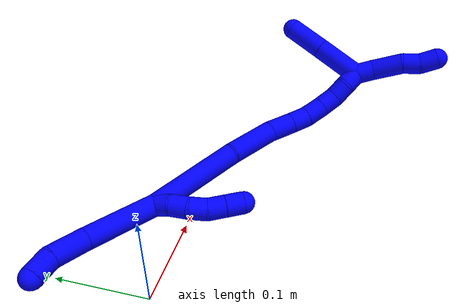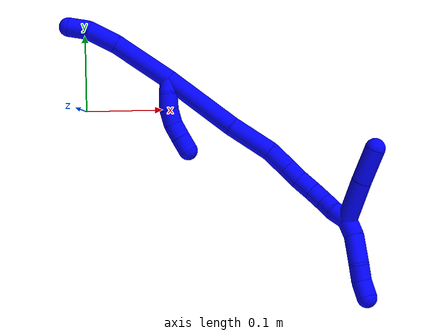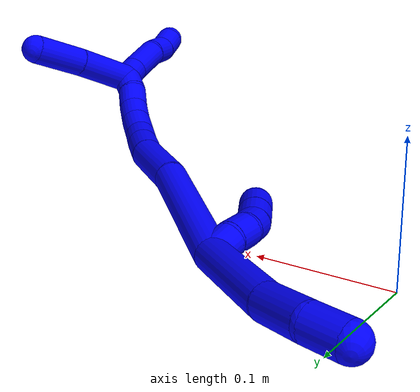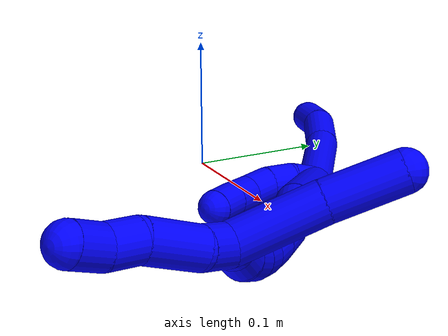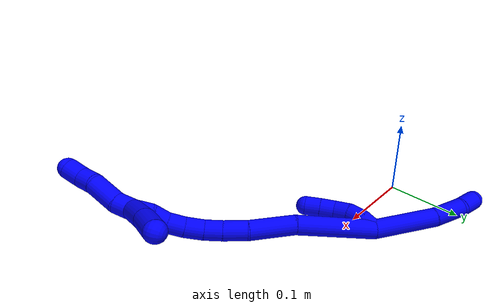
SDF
<sdf version="1.7">
 <world name="default">
  <model name="1">
   <static>0</static>
   <link name="1">
    <collision name="collision-cylinder-e_1_2_8">
     <pose>-0.012343 0.018475 -0.035374 -2.66028 -0.299952 1.10382</pose>
     <geometry><cylinder><radius>0.0125</radius><length>0.083547</length></cylinder></geometry>
     <surface>
      <friction><ode><mu>1.16</mu><mu2>1.16</mu2><slip1>0</slip1><slip2>0</slip2></ode></friction>
      <contact><ode><kp>1e+06</kp><kd>1</kd><max_vel>0</max_vel><min_depth>0.001</min_depth></ode></contact>
     </surface>
    </collision>
    <visual name="visual-cylinder-e_1_2_8">
     <pose>-0.012343 0.018475 -0.035374 -2.66028 -0.299952 1.10382</pose>
     <geometry><cylinder><radius>0.0125</radius><length>0.083547</length></cylinder></geometry>
     <material><ambient>0 0 1 1</ambient></material>
    </visual>
    <collision name="collision-cylinder-e_2_8_9">
     <pose>-0.031624 0.048339 -0.085962 -2.49902 -0.35003 0.976733</pose>
     <geometry><cylinder><radius>0.0125</radius><length>0.040461</length></cylinder></geometry>
     <surface>
      <friction><ode><mu>1.16</mu><mu2>1.16</mu2><slip1>0</slip1><slip2>0</slip2></ode></friction>
      <contact><ode><kp>1e+06</kp><kd>1</kd><max_vel>0</max_vel><min_depth>0.001</min_depth></ode></contact>
     </surface>
    </collision>
    <visual name="visual-cylinder-e_2_8_9">
     <pose>-0.031624 0.048339 -0.085962 -2.49902 -0.35003 0.976733</pose>
     <geometry><cylinder><radius>0.0125</radius><length>0.040461</length></cylinder></geometry>
     <material><ambient>0 0 1 1</ambient></material>
    </visual>
    <collision name="collision-cylinder-e_3_9_6">
     <pose>-0.046734 0.066432 -0.108735 -2.41599 -0.680114 1.50046</pose>
     <geometry><cylinder><radius>0.0125</radius><length>0.025992</length></cylinder></geometry>
     <surface>
      <friction><ode><mu>1.16</mu><mu2>1.16</mu2><slip1>0</slip1><slip2>0</slip2></ode></friction>
      <contact><ode><kp>1e+06</kp><kd>1</kd><max_vel>0</max_vel><min_depth>0.001</min_depth></ode></contact>
     </surface>
    </collision>
    <visual name="visual-cylinder-e_3_9_6">
     <pose>-0.046734 0.066432 -0.108735 -2.41599 -0.680114 1.50046</pose>
     <geometry><cylinder><radius>0.0125</radius><length>0.025992</length></cylinder></geometry>
     <material><ambient>0 0 1 1</ambient></material>
    </visual>
    <collision name="collision-cylinder-e_1_2_10">
     <pose>-0.003424 0.00351 0.008715 -0.382874 -0.349486 0.068405</pose>
     <geometry><cylinder><radius>0.0125</radius><length>0.02</length></cylinder></geometry>
     <surface>
      <friction><ode><mu>1.16</mu><mu2>1.16</mu2><slip1>0</slip1><slip2>0</slip2></ode></friction>
      <contact><ode><kp>1e+06</kp><kd>1</kd><max_vel>0</max_vel><min_depth>0.001</min_depth></ode></contact>
     </surface>
    </collision>
    <visual name="visual-cylinder-e_1_2_10">
     <pose>-0.003424 0.00351 0.008715 -0.382874 -0.349486 0.068405</pose>
     <geometry><cylinder><radius>0.0125</radius><length>0.02</length></cylinder></geometry>
     <material><ambient>0 0 1 1</ambient></material>
    </visual>
    <collision name="collision-cylinder-e_2_10_11">
     <pose>-0.011214 0.008169 0.026353 -0.128111 -0.451825 0.029483</pose>
     <geometry><cylinder><radius>0.0125</radius><length>0.02</length></cylinder></geometry>
     <surface>
      <friction><ode><mu>1.16</mu><mu2>1.16</mu2><slip1>0</slip1><slip2>0</slip2></ode></friction>
      <contact><ode><kp>1e+06</kp><kd>1</kd><max_vel>0</max_vel><min_depth>0.001</min_depth></ode></contact>
     </surface>
    </collision>
    <visual name="visual-cylinder-e_2_10_11">
     <pose>-0.011214 0.008169 0.026353 -0.128111 -0.451825 0.029483</pose>
     <geometry><cylinder><radius>0.0125</radius><length>0.02</length></cylinder></geometry>
     <material><ambient>0 0 1 1</ambient></material>
    </visual>
    <collision name="collision-cylinder-e_3_11_12">
     <pose>-0.018775 0.007971 0.044656 0.142721 -0.325147 -0.023448</pose>
     <geometry><cylinder><radius>0.0125</radius><length>0.02</length></cylinder></geometry>
     <surface>
      <friction><ode><mu>1.16</mu><mu2>1.16</mu2><slip1>0</slip1><slip2>0</slip2></ode></friction>
      <contact><ode><kp>1e+06</kp><kd>1</kd><max_vel>0</max_vel><min_depth>0.001</min_depth></ode></contact>
     </surface>
    </collision>
    <visual name="visual-cylinder-e_3_11_12">
     <pose>-0.018775 0.007971 0.044656 0.142721 -0.325147 -0.023448</pose>
     <geometry><cylinder><radius>0.0125</radius><length>0.02</length></cylinder></geometry>
     <material><ambient>0 0 1 1</ambient></material>
    </visual>
    <collision name="collision-cylinder-e_4_12_13">
     <pose>-0.022467 0.005247 0.063928 0.13819 -0.04981 -0.003448</pose>
     <geometry><cylinder><radius>0.0125</radius><length>0.02</length></cylinder></geometry>
     <surface>
      <friction><ode><mu>1.16</mu><mu2>1.16</mu2><slip1>0</slip1><slip2>0</slip2></ode></friction>
      <contact><ode><kp>1e+06</kp><kd>1</kd><max_vel>0</max_vel><min_depth>0.001</min_depth></ode></contact>
     </surface>
    </collision>
    <visual name="visual-cylinder-e_4_12_13">
     <pose>-0.022467 0.005247 0.063928 0.13819 -0.04981 -0.003448</pose>
     <geometry><cylinder><radius>0.0125</radius><length>0.02</length></cylinder></geometry>
     <material><ambient>0 0 1 1</ambient></material>
    </visual>
    <collision name="collision-cylinder-e_5_13_5">
     <pose>-0.023405 0.002094 0.083651 0.17889 -0.044039 -0.00395</pose>
     <geometry><cylinder><radius>0.0125</radius><length>0.02</length></cylinder></geometry>
     <surface>
      <friction><ode><mu>1.16</mu><mu2>1.16</mu2><slip1>0</slip1><slip2>0</slip2></ode></friction>
      <contact><ode><kp>1e+06</kp><kd>1</kd><max_vel>0</max_vel><min_depth>0.001</min_depth></ode></contact>
     </surface>
    </collision>
    <visual name="visual-cylinder-e_5_13_5">
     <pose>-0.023405 0.002094 0.083651 0.17889 -0.044039 -0.00395</pose>
     <geometry><cylinder><radius>0.0125</radius><length>0.02</length></cylinder></geometry>
     <material><ambient>0 0 1 1</ambient></material>
    </visual>
    <collision name="collision-cylinder-e_1_2_14">
     <pose>0.02001 -0.010342 0.047355 0.215021 0.391513 0.042796</pose>
     <geometry><cylinder><radius>0.0125</radius><length>0.104878</length></cylinder></geometry>
     <surface>
      <friction><ode><mu>1.16</mu><mu2>1.16</mu2><slip1>0</slip1><slip2>0</slip2></ode></friction>
      <contact><ode><kp>1e+06</kp><kd>1</kd><max_vel>0</max_vel><min_depth>0.001</min_depth></ode></contact>
     </surface>
    </collision>
    <visual name="visual-cylinder-e_1_2_14">
     <pose>0.02001 -0.010342 0.047355 0.215021 0.391513 0.042796</pose>
     <geometry><cylinder><radius>0.0125</radius><length>0.104878</length></cylinder></geometry>
     <material><ambient>0 0 1 1</ambient></material>
    </visual>
    <collision name="collision-cylinder-e_2_14_15">
     <pose>0.050318 -0.031342 0.119656 0.403758 0.362797 0.075043</pose>
     <geometry><cylinder><radius>0.0125</radius><length>0.058031</length></cylinder></geometry>
     <surface>
      <friction><ode><mu>1.16</mu><mu2>1.16</mu2><slip1>0</slip1><slip2>0</slip2></ode></friction>
      <contact><ode><kp>1e+06</kp><kd>1</kd><max_vel>0</max_vel><min_depth>0.001</min_depth></ode></contact>
     </surface>
    </collision>
    <visual name="visual-cylinder-e_2_14_15">
     <pose>0.050318 -0.031342 0.119656 0.403758 0.362797 0.075043</pose>
     <geometry><cylinder><radius>0.0125</radius><length>0.058031</length></cylinder></geometry>
     <material><ambient>0 0 1 1</ambient></material>
    </visual>
    <collision name="collision-cylinder-e_3_15_16">
     <pose>0.063647 -0.046373 0.158514 0.304586 0.205006 0.031573</pose>
     <geometry><cylinder><radius>0.0125</radius><length>0.029792</length></cylinder></geometry>
     <surface>
      <friction><ode><mu>1.16</mu><mu2>1.16</mu2><slip1>0</slip1><slip2>0</slip2></ode></friction>
      <contact><ode><kp>1e+06</kp><kd>1</kd><max_vel>0</max_vel><min_depth>0.001</min_depth></ode></contact>
     </surface>
    </collision>
    <visual name="visual-cylinder-e_3_15_16">
     <pose>0.063647 -0.046373 0.158514 0.304586 0.205006 0.031573</pose>
     <geometry><cylinder><radius>0.0125</radius><length>0.029792</length></cylinder></geometry>
     <material><ambient>0 0 1 1</ambient></material>
    </visual>
    <collision name="collision-cylinder-e_4_16_17">
     <pose>0.069033 -0.05344 0.183047 0.248304 0.211567 0.0265</pose>
     <geometry><cylinder><radius>0.0125</radius><length>0.022413</length></cylinder></geometry>
     <surface>
      <friction><ode><mu>1.16</mu><mu2>1.16</mu2><slip1>0</slip1><slip2>0</slip2></ode></friction>
      <contact><ode><kp>1e+06</kp><kd>1</kd><max_vel>0</max_vel><min_depth>0.001</min_depth></ode></contact>
     </surface>
    </collision>
    <visual name="visual-cylinder-e_4_16_17">
     <pose>0.069033 -0.05344 0.183047 0.248304 0.211567 0.0265</pose>
     <geometry><cylinder><radius>0.0125</radius><length>0.022413</length></cylinder></geometry>
     <material><ambient>0 0 1 1</ambient></material>
    </visual>
    <collision name="collision-cylinder-e_5_17_18">
     <pose>0.075573 -0.05743 0.204577 0.118363 0.364084 0.021813</pose>
     <geometry><cylinder><radius>0.0125</radius><length>0.023512</length></cylinder></geometry>
     <surface>
      <friction><ode><mu>1.16</mu><mu2>1.16</mu2><slip1>0</slip1><slip2>0</slip2></ode></friction>
      <contact><ode><kp>1e+06</kp><kd>1</kd><max_vel>0</max_vel><min_depth>0.001</min_depth></ode></contact>
     </surface>
    </collision>
    <visual name="visual-cylinder-e_5_17_18">
     <pose>0.075573 -0.05743 0.204577 0.118363 0.364084 0.021813</pose>
     <geometry><cylinder><radius>0.0125</radius><length>0.023512</length></cylinder></geometry>
     <material><ambient>0 0 1 1</ambient></material>
    </visual>
    <collision name="collision-cylinder-e_6_18_19">
     <pose>0.083797 -0.058684 0.225379 -0.004362 0.387484 -0.000856</pose>
     <geometry><cylinder><radius>0.0125</radius><length>0.021372</length></cylinder></geometry>
     <surface>
      <friction><ode><mu>1.16</mu><mu2>1.16</mu2><slip1>0</slip1><slip2>0</slip2></ode></friction>
      <contact><ode><kp>1e+06</kp><kd>1</kd><max_vel>0</max_vel><min_depth>0.001</min_depth></ode></contact>
     </surface>
    </collision>
    <visual name="visual-cylinder-e_6_18_19">
     <pose>0.083797 -0.058684 0.225379 -0.004362 0.387484 -0.000856</pose>
     <geometry><cylinder><radius>0.0125</radius><length>0.021372</length></cylinder></geometry>
     <material><ambient>0 0 1 1</ambient></material>
    </visual>
    <collision name="collision-cylinder-e_7_19_20">
     <pose>0.092432 -0.055908 0.243722 -0.312726 0.477735 -0.076743</pose>
     <geometry><cylinder><radius>0.0125</radius><length>0.020001</length></cylinder></geometry>
     <surface>
      <friction><ode><mu>1.16</mu><mu2>1.16</mu2><slip1>0</slip1><slip2>0</slip2></ode></friction>
      <contact><ode><kp>1e+06</kp><kd>1</kd><max_vel>0</max_vel><min_depth>0.001</min_depth></ode></contact>
     </surface>
    </collision>
    <visual name="visual-cylinder-e_7_19_20">
     <pose>0.092432 -0.055908 0.243722 -0.312726 0.477735 -0.076743</pose>
     <geometry><cylinder><radius>0.0125</radius><length>0.020001</length></cylinder></geometry>
     <material><ambient>0 0 1 1</ambient></material>
    </visual>
    <collision name="collision-cylinder-e_8_20_1">
     <pose>0.102242 -0.053134 0.260707 -0.004877 0.548189 -0.001371</pose>
     <geometry><cylinder><radius>0.0125</radius><length>0.020001</length></cylinder></geometry>
     <surface>
      <friction><ode><mu>1.16</mu><mu2>1.16</mu2><slip1>0</slip1><slip2>0</slip2></ode></friction>
      <contact><ode><kp>1e+06</kp><kd>1</kd><max_vel>0</max_vel><min_depth>0.001</min_depth></ode></contact>
     </surface>
    </collision>
    <visual name="visual-cylinder-e_8_20_1">
     <pose>0.102242 -0.053134 0.260707 -0.004877 0.548189 -0.001371</pose>
     <geometry><cylinder><radius>0.0125</radius><length>0.020001</length></cylinder></geometry>
     <material><ambient>0 0 1 1</ambient></material>
    </visual>
    <collision name="collision-cylinder-e_1_1_21">
     <pose>0.129679 -0.051543 0.253088 -3.04592 0.940123 -2.95369</pose>
     <geometry><cylinder><radius>0.0125</radius><length>0.055039</length></cylinder></geometry>
     <surface>
      <friction><ode><mu>1.16</mu><mu2>1.16</mu2><slip1>0</slip1><slip2>0</slip2></ode></friction>
      <contact><ode><kp>1e+06</kp><kd>1</kd><max_vel>0</max_vel><min_depth>0.001</min_depth></ode></contact>
     </surface>
    </collision>
    <visual name="visual-cylinder-e_1_1_21">
     <pose>0.129679 -0.051543 0.253088 -3.04592 0.940123 -2.95369</pose>
     <geometry><cylinder><radius>0.0125</radius><length>0.055039</length></cylinder></geometry>
     <material><ambient>0 0 1 1</ambient></material>
    </visual>
    <collision name="collision-cylinder-e_2_21_4">
     <pose>0.170301 -0.050079 0.224014 3.13486 0.958469 3.12863</pose>
     <geometry><cylinder><radius>0.0125</radius><length>0.044961</length></cylinder></geometry>
     <surface>
      <friction><ode><mu>1.16</mu><mu2>1.16</mu2><slip1>0</slip1><slip2>0</slip2></ode></friction>
      <contact><ode><kp>1e+06</kp><kd>1</kd><max_vel>0</max_vel><min_depth>0.001</min_depth></ode></contact>
     </surface>
    </collision>
    <visual name="visual-cylinder-e_2_21_4">
     <pose>0.170301 -0.050079 0.224014 3.13486 0.958469 3.12863</pose>
     <geometry><cylinder><radius>0.0125</radius><length>0.044961</length></cylinder></geometry>
     <material><ambient>0 0 1 1</ambient></material>
    </visual>
    <collision name="collision-cylinder-e_1_1_22">
     <pose>0.106941 -0.052266 0.279993 -0.076802 -0.0475 0.001825</pose>
     <geometry><cylinder><radius>0.0125</radius><length>0.021588</length></cylinder></geometry>
     <surface>
      <friction><ode><mu>1.16</mu><mu2>1.16</mu2><slip1>0</slip1><slip2>0</slip2></ode></friction>
      <contact><ode><kp>1e+06</kp><kd>1</kd><max_vel>0</max_vel><min_depth>0.001</min_depth></ode></contact>
     </surface>
    </collision>
    <visual name="visual-cylinder-e_1_1_22">
     <pose>0.106941 -0.052266 0.279993 -0.076802 -0.0475 0.001825</pose>
     <geometry><cylinder><radius>0.0125</radius><length>0.021588</length></cylinder></geometry>
     <material><ambient>0 0 1 1</ambient></material>
    </visual>
    <collision name="collision-cylinder-e_2_22_23">
     <pose>0.103257 -0.045698 0.307865 -0.323468 -0.173853 0.028435</pose>
     <geometry><cylinder><radius>0.0125</radius><length>0.036671</length></cylinder></geometry>
     <surface>
      <friction><ode><mu>1.16</mu><mu2>1.16</mu2><slip1>0</slip1><slip2>0</slip2></ode></friction>
      <contact><ode><kp>1e+06</kp><kd>1</kd><max_vel>0</max_vel><min_depth>0.001</min_depth></ode></contact>
     </surface>
    </collision>
    <visual name="visual-cylinder-e_2_22_23">
     <pose>0.103257 -0.045698 0.307865 -0.323468 -0.173853 0.028435</pose>
     <geometry><cylinder><radius>0.0125</radius><length>0.036671</length></cylinder></geometry>
     <material><ambient>0 0 1 1</ambient></material>
    </visual>
    <collision name="collision-cylinder-e_3_23_24">
     <pose>0.096694 -0.039272 0.334624 -0.07109 -0.337583 0.01212</pose>
     <geometry><cylinder><radius>0.0125</radius><length>0.020476</length></cylinder></geometry>
     <surface>
      <friction><ode><mu>1.16</mu><mu2>1.16</mu2><slip1>0</slip1><slip2>0</slip2></ode></friction>
      <contact><ode><kp>1e+06</kp><kd>1</kd><max_vel>0</max_vel><min_depth>0.001</min_depth></ode></contact>
     </surface>
    </collision>
    <visual name="visual-cylinder-e_3_23_24">
     <pose>0.096694 -0.039272 0.334624 -0.07109 -0.337583 0.01212</pose>
     <geometry><cylinder><radius>0.0125</radius><length>0.020476</length></cylinder></geometry>
     <material><ambient>0 0 1 1</ambient></material>
    </visual>
    <collision name="collision-cylinder-e_4_24_3">
     <pose>0.092659 -0.03612 0.354582 -0.234453 -0.060662 0.007146</pose>
     <geometry><cylinder><radius>0.0125</radius><length>0.021265</length></cylinder></geometry>
     <surface>
      <friction><ode><mu>1.16</mu><mu2>1.16</mu2><slip1>0</slip1><slip2>0</slip2></ode></friction>
      <contact><ode><kp>1e+06</kp><kd>1</kd><max_vel>0</max_vel><min_depth>0.001</min_depth></ode></contact>
     </surface>
    </collision>
    <visual name="visual-cylinder-e_4_24_3">
     <pose>0.092659 -0.03612 0.354582 -0.234453 -0.060662 0.007146</pose>
     <geometry><cylinder><radius>0.0125</radius><length>0.021265</length></cylinder></geometry>
     <material><ambient>0 0 1 1</ambient></material>
    </visual>
    <collision name="collision-sphere-3">
     <pose>0.092014 -0.033655 0.364904 0 -0 0</pose>
     <geometry><sphere><radius>0.0125</radius></sphere></geometry>
     <surface>
      <friction><ode><mu>1.16</mu><mu2>1.16</mu2><slip1>0</slip1><slip2>0</slip2></ode></friction>
      <contact><ode><kp>1e+06</kp><kd>1</kd><max_vel>0</max_vel><min_depth>0.001</min_depth></ode></contact>
     </surface>
    </collision>
    <visual name="visual-sphere-3">
     <pose>0.092014 -0.033655 0.364904 0 -0 0</pose>
     <geometry><sphere><radius>0.0125</radius></sphere></geometry>
     <material><ambient>0 0 1 1</ambient></material>
    </visual>
    <collision name="collision-sphere-24">
     <pose>0.093303 -0.038586 0.344259 0 -0 0</pose>
     <geometry><sphere><radius>0.0125</radius></sphere></geometry>
     <surface>
      <friction><ode><mu>1.16</mu><mu2>1.16</mu2><slip1>0</slip1><slip2>0</slip2></ode></friction>
      <contact><ode><kp>1e+06</kp><kd>1</kd><max_vel>0</max_vel><min_depth>0.001</min_depth></ode></contact>
     </surface>
    </collision>
    <visual name="visual-sphere-24">
     <pose>0.093303 -0.038586 0.344259 0 -0 0</pose>
     <geometry><sphere><radius>0.0125</radius></sphere></geometry>
     <material><ambient>0 0 1 1</ambient></material>
    </visual>
    <collision name="collision-sphere-23">
     <pose>0.100085 -0.039958 0.324988 0 -0 0</pose>
     <geometry><sphere><radius>0.0125</radius></sphere></geometry>
     <surface>
      <friction><ode><mu>1.16</mu><mu2>1.16</mu2><slip1>0</slip1><slip2>0</slip2></ode></friction>
      <contact><ode><kp>1e+06</kp><kd>1</kd><max_vel>0</max_vel><min_depth>0.001</min_depth></ode></contact>
     </surface>
    </collision>
    <visual name="visual-sphere-23">
     <pose>0.100085 -0.039958 0.324988 0 -0 0</pose>
     <geometry><sphere><radius>0.0125</radius></sphere></geometry>
     <material><ambient>0 0 1 1</ambient></material>
    </visual>
    <collision name="collision-sphere-22">
     <pose>0.106428 -0.051438 0.290743 0 -0 0</pose>
     <geometry><sphere><radius>0.0125</radius></sphere></geometry>
     <surface>
      <friction><ode><mu>1.16</mu><mu2>1.16</mu2><slip1>0</slip1><slip2>0</slip2></ode></friction>
      <contact><ode><kp>1e+06</kp><kd>1</kd><max_vel>0</max_vel><min_depth>0.001</min_depth></ode></contact>
     </surface>
    </collision>
    <visual name="visual-sphere-22">
     <pose>0.106428 -0.051438 0.290743 0 -0 0</pose>
     <geometry><sphere><radius>0.0125</radius></sphere></geometry>
     <material><ambient>0 0 1 1</ambient></material>
    </visual>
    <collision name="collision-sphere-4">
     <pose>0.188697 -0.050166 0.211093 0 -0 0</pose>
     <geometry><sphere><radius>0.0125</radius></sphere></geometry>
     <surface>
      <friction><ode><mu>1.16</mu><mu2>1.16</mu2><slip1>0</slip1><slip2>0</slip2></ode></friction>
      <contact><ode><kp>1e+06</kp><kd>1</kd><max_vel>0</max_vel><min_depth>0.001</min_depth></ode></contact>
     </surface>
    </collision>
    <visual name="visual-sphere-4">
     <pose>0.188697 -0.050166 0.211093 0 -0 0</pose>
     <geometry><sphere><radius>0.0125</radius></sphere></geometry>
     <material><ambient>0 0 1 1</ambient></material>
    </visual>
    <collision name="collision-sphere-21">
     <pose>0.151905 -0.049992 0.236935 0 -0 0</pose>
     <geometry><sphere><radius>0.0125</radius></sphere></geometry>
     <surface>
      <friction><ode><mu>1.16</mu><mu2>1.16</mu2><slip1>0</slip1><slip2>0</slip2></ode></friction>
      <contact><ode><kp>1e+06</kp><kd>1</kd><max_vel>0</max_vel><min_depth>0.001</min_depth></ode></contact>
     </surface>
    </collision>
    <visual name="visual-sphere-21">
     <pose>0.151905 -0.049992 0.236935 0 -0 0</pose>
     <geometry><sphere><radius>0.0125</radius></sphere></geometry>
     <material><ambient>0 0 1 1</ambient></material>
    </visual>
    <collision name="collision-sphere-1">
     <pose>0.107454 -0.053093 0.269242 0 -0 0</pose>
     <geometry><sphere><radius>0.0125</radius></sphere></geometry>
     <surface>
      <friction><ode><mu>1.16</mu><mu2>1.16</mu2><slip1>0</slip1><slip2>0</slip2></ode></friction>
      <contact><ode><kp>1e+06</kp><kd>1</kd><max_vel>0</max_vel><min_depth>0.001</min_depth></ode></contact>
     </surface>
    </collision>
    <visual name="visual-sphere-1">
     <pose>0.107454 -0.053093 0.269242 0 -0 0</pose>
     <geometry><sphere><radius>0.0125</radius></sphere></geometry>
     <material><ambient>0 0 1 1</ambient></material>
    </visual>
    <collision name="collision-sphere-11">
     <pose>-0.01558 0.009319 0.035276 0 -0 0</pose>
     <geometry><sphere><radius>0.0125</radius></sphere></geometry>
     <surface>
      <friction><ode><mu>1.16</mu><mu2>1.16</mu2><slip1>0</slip1><slip2>0</slip2></ode></friction>
      <contact><ode><kp>1e+06</kp><kd>1</kd><max_vel>0</max_vel><min_depth>0.001</min_depth></ode></contact>
     </surface>
    </collision>
    <visual name="visual-sphere-11">
     <pose>-0.01558 0.009319 0.035276 0 -0 0</pose>
     <geometry><sphere><radius>0.0125</radius></sphere></geometry>
     <material><ambient>0 0 1 1</ambient></material>
    </visual>
    <collision name="collision-sphere-10">
     <pose>-0.006848 0.00702 0.01743 0 -0 0</pose>
     <geometry><sphere><radius>0.0125</radius></sphere></geometry>
     <surface>
      <friction><ode><mu>1.16</mu><mu2>1.16</mu2><slip1>0</slip1><slip2>0</slip2></ode></friction>
      <contact><ode><kp>1e+06</kp><kd>1</kd><max_vel>0</max_vel><min_depth>0.001</min_depth></ode></contact>
     </surface>
    </collision>
    <visual name="visual-sphere-10">
     <pose>-0.006848 0.00702 0.01743 0 -0 0</pose>
     <geometry><sphere><radius>0.0125</radius></sphere></geometry>
     <material><ambient>0 0 1 1</ambient></material>
    </visual>
    <collision name="collision-sphere-6">
     <pose>-0.054907 0.073137 -0.116294 0 -0 0</pose>
     <geometry><sphere><radius>0.0125</radius></sphere></geometry>
     <surface>
      <friction><ode><mu>1.16</mu><mu2>1.16</mu2><slip1>0</slip1><slip2>0</slip2></ode></friction>
      <contact><ode><kp>1e+06</kp><kd>1</kd><max_vel>0</max_vel><min_depth>0.001</min_depth></ode></contact>
     </surface>
    </collision>
    <visual name="visual-sphere-6">
     <pose>-0.054907 0.073137 -0.116294 0 -0 0</pose>
     <geometry><sphere><radius>0.0125</radius></sphere></geometry>
     <material><ambient>0 0 1 1</ambient></material>
    </visual>
    <collision name="collision-sphere-9">
     <pose>-0.038561 0.059727 -0.101176 0 -0 0</pose>
     <geometry><sphere><radius>0.0125</radius></sphere></geometry>
     <surface>
      <friction><ode><mu>1.16</mu><mu2>1.16</mu2><slip1>0</slip1><slip2>0</slip2></ode></friction>
      <contact><ode><kp>1e+06</kp><kd>1</kd><max_vel>0</max_vel><min_depth>0.001</min_depth></ode></contact>
     </surface>
    </collision>
    <visual name="visual-sphere-9">
     <pose>-0.038561 0.059727 -0.101176 0 -0 0</pose>
     <geometry><sphere><radius>0.0125</radius></sphere></geometry>
     <material><ambient>0 0 1 1</ambient></material>
    </visual>
    <collision name="collision-sphere-2">
     <geometry><sphere><radius>0.0125</radius></sphere></geometry>
     <surface>
      <friction><ode><mu>1.16</mu><mu2>1.16</mu2><slip1>0</slip1><slip2>0</slip2></ode></friction>
      <contact><ode><kp>1e+06</kp><kd>1</kd><max_vel>0</max_vel><min_depth>0.001</min_depth></ode></contact>
     </surface>
    </collision>
    <visual name="visual-sphere-2">
     <geometry><sphere><radius>0.0125</radius></sphere></geometry>
     <material><ambient>0 0 1 1</ambient></material>
    </visual>
    <collision name="collision-sphere-19">
     <pose>0.087834 -0.058641 0.235272 0 -0 0</pose>
     <geometry><sphere><radius>0.0125</radius></sphere></geometry>
     <surface>
      <friction><ode><mu>1.16</mu><mu2>1.16</mu2><slip1>0</slip1><slip2>0</slip2></ode></friction>
      <contact><ode><kp>1e+06</kp><kd>1</kd><max_vel>0</max_vel><min_depth>0.001</min_depth></ode></contact>
     </surface>
    </collision>
    <visual name="visual-sphere-19">
     <pose>0.087834 -0.058641 0.235272 0 -0 0</pose>
     <geometry><sphere><radius>0.0125</radius></sphere></geometry>
     <material><ambient>0 0 1 1</ambient></material>
    </visual>
    <collision name="collision-sphere-8">
     <pose>-0.024686 0.036951 -0.070749 0 -0 0</pose>
     <geometry><sphere><radius>0.0125</radius></sphere></geometry>
     <surface>
      <friction><ode><mu>1.16</mu><mu2>1.16</mu2><slip1>0</slip1><slip2>0</slip2></ode></friction>
      <contact><ode><kp>1e+06</kp><kd>1</kd><max_vel>0</max_vel><min_depth>0.001</min_depth></ode></contact>
     </surface>
    </collision>
    <visual name="visual-sphere-8">
     <pose>-0.024686 0.036951 -0.070749 0 -0 0</pose>
     <geometry><sphere><radius>0.0125</radius></sphere></geometry>
     <material><ambient>0 0 1 1</ambient></material>
    </visual>
    <collision name="collision-sphere-12">
     <pose>-0.021969 0.006623 0.054035 0 -0 0</pose>
     <geometry><sphere><radius>0.0125</radius></sphere></geometry>
     <surface>
      <friction><ode><mu>1.16</mu><mu2>1.16</mu2><slip1>0</slip1><slip2>0</slip2></ode></friction>
      <contact><ode><kp>1e+06</kp><kd>1</kd><max_vel>0</max_vel><min_depth>0.001</min_depth></ode></contact>
     </surface>
    </collision>
    <visual name="visual-sphere-12">
     <pose>-0.021969 0.006623 0.054035 0 -0 0</pose>
     <geometry><sphere><radius>0.0125</radius></sphere></geometry>
     <material><ambient>0 0 1 1</ambient></material>
    </visual>
    <collision name="collision-sphere-13">
     <pose>-0.022965 0.003872 0.07382 0 -0 0</pose>
     <geometry><sphere><radius>0.0125</radius></sphere></geometry>
     <surface>
      <friction><ode><mu>1.16</mu><mu2>1.16</mu2><slip1>0</slip1><slip2>0</slip2></ode></friction>
      <contact><ode><kp>1e+06</kp><kd>1</kd><max_vel>0</max_vel><min_depth>0.001</min_depth></ode></contact>
     </surface>
    </collision>
    <visual name="visual-sphere-13">
     <pose>-0.022965 0.003872 0.07382 0 -0 0</pose>
     <geometry><sphere><radius>0.0125</radius></sphere></geometry>
     <material><ambient>0 0 1 1</ambient></material>
    </visual>
    <collision name="collision-sphere-5">
     <pose>-0.023846 0.000316 0.093482 0 -0 0</pose>
     <geometry><sphere><radius>0.0125</radius></sphere></geometry>
     <surface>
      <friction><ode><mu>1.16</mu><mu2>1.16</mu2><slip1>0</slip1><slip2>0</slip2></ode></friction>
      <contact><ode><kp>1e+06</kp><kd>1</kd><max_vel>0</max_vel><min_depth>0.001</min_depth></ode></contact>
     </surface>
    </collision>
    <visual name="visual-sphere-5">
     <pose>-0.023846 0.000316 0.093482 0 -0 0</pose>
     <geometry><sphere><radius>0.0125</radius></sphere></geometry>
     <material><ambient>0 0 1 1</ambient></material>
    </visual>
    <collision name="collision-sphere-14">
     <pose>0.04002 -0.020684 0.09471 0 -0 0</pose>
     <geometry><sphere><radius>0.0125</radius></sphere></geometry>
     <surface>
      <friction><ode><mu>1.16</mu><mu2>1.16</mu2><slip1>0</slip1><slip2>0</slip2></ode></friction>
      <contact><ode><kp>1e+06</kp><kd>1</kd><max_vel>0</max_vel><min_depth>0.001</min_depth></ode></contact>
     </surface>
    </collision>
    <visual name="visual-sphere-14">
     <pose>0.04002 -0.020684 0.09471 0 -0 0</pose>
     <geometry><sphere><radius>0.0125</radius></sphere></geometry>
     <material><ambient>0 0 1 1</ambient></material>
    </visual>
    <collision name="collision-sphere-15">
     <pose>0.060615 -0.042 0.144601 0 -0 0</pose>
     <geometry><sphere><radius>0.0125</radius></sphere></geometry>
     <surface>
      <friction><ode><mu>1.16</mu><mu2>1.16</mu2><slip1>0</slip1><slip2>0</slip2></ode></friction>
      <contact><ode><kp>1e+06</kp><kd>1</kd><max_vel>0</max_vel><min_depth>0.001</min_depth></ode></contact>
     </surface>
    </collision>
    <visual name="visual-sphere-15">
     <pose>0.060615 -0.042 0.144601 0 -0 0</pose>
     <geometry><sphere><radius>0.0125</radius></sphere></geometry>
     <material><ambient>0 0 1 1</ambient></material>
    </visual>
    <collision name="collision-sphere-16">
     <pose>0.06668 -0.050747 0.172427 0 -0 0</pose>
     <geometry><sphere><radius>0.0125</radius></sphere></geometry>
     <surface>
      <friction><ode><mu>1.16</mu><mu2>1.16</mu2><slip1>0</slip1><slip2>0</slip2></ode></friction>
      <contact><ode><kp>1e+06</kp><kd>1</kd><max_vel>0</max_vel><min_depth>0.001</min_depth></ode></contact>
     </surface>
    </collision>
    <visual name="visual-sphere-16">
     <pose>0.06668 -0.050747 0.172427 0 -0 0</pose>
     <geometry><sphere><radius>0.0125</radius></sphere></geometry>
     <material><ambient>0 0 1 1</ambient></material>
    </visual>
    <collision name="collision-sphere-17">
     <pose>0.071386 -0.056132 0.193668 0 -0 0</pose>
     <geometry><sphere><radius>0.0125</radius></sphere></geometry>
     <surface>
      <friction><ode><mu>1.16</mu><mu2>1.16</mu2><slip1>0</slip1><slip2>0</slip2></ode></friction>
      <contact><ode><kp>1e+06</kp><kd>1</kd><max_vel>0</max_vel><min_depth>0.001</min_depth></ode></contact>
     </surface>
    </collision>
    <visual name="visual-sphere-17">
     <pose>0.071386 -0.056132 0.193668 0 -0 0</pose>
     <geometry><sphere><radius>0.0125</radius></sphere></geometry>
     <material><ambient>0 0 1 1</ambient></material>
    </visual>
    <collision name="collision-sphere-18">
     <pose>0.079759 -0.058727 0.215485 0 -0 0</pose>
     <geometry><sphere><radius>0.0125</radius></sphere></geometry>
     <surface>
      <friction><ode><mu>1.16</mu><mu2>1.16</mu2><slip1>0</slip1><slip2>0</slip2></ode></friction>
      <contact><ode><kp>1e+06</kp><kd>1</kd><max_vel>0</max_vel><min_depth>0.001</min_depth></ode></contact>
     </surface>
    </collision>
    <visual name="visual-sphere-18">
     <pose>0.079759 -0.058727 0.215485 0 -0 0</pose>
     <geometry><sphere><radius>0.0125</radius></sphere></geometry>
     <material><ambient>0 0 1 1</ambient></material>
    </visual>
    <collision name="collision-sphere-20">
     <pose>0.09703 -0.053176 0.252172 0 -0 0</pose>
     <geometry><sphere><radius>0.0125</radius></sphere></geometry>
     <surface>
      <friction><ode><mu>1.16</mu><mu2>1.16</mu2><slip1>0</slip1><slip2>0</slip2></ode></friction>
      <contact><ode><kp>1e+06</kp><kd>1</kd><max_vel>0</max_vel><min_depth>0.001</min_depth></ode></contact>
     </surface>
    </collision>
    <visual name="visual-sphere-20">
     <pose>0.09703 -0.053176 0.252172 0 -0 0</pose>
     <geometry><sphere><radius>0.0125</radius></sphere></geometry>
     <material><ambient>0 0 1 1</ambient></material>
    </visual>
    <inertial>
     <pose>0.047536 -0.018623 0.121954 0 -0 0</pose>
     <mass>0.75</mass>
     <inertia>
      <ixx>0.000212</ixx>
      <ixy>0</ixy>
      <ixz>0</ixz>
      <iyy>0.000213</iyy>
      <iyz>0</iyz>
      <izz>-2.8e-05</izz>
     </inertia>
    </inertial>
   </link>
   <pose>0.111098 0.038964 0.011457 1.34727 -0.576954 0.569537</pose>
  </model>
 </world>
</sdf>
